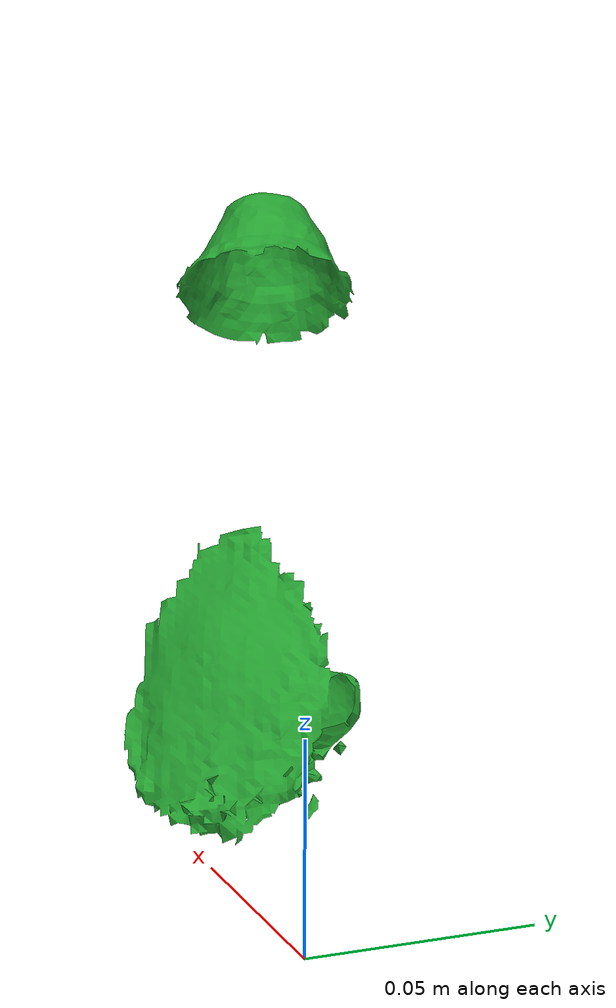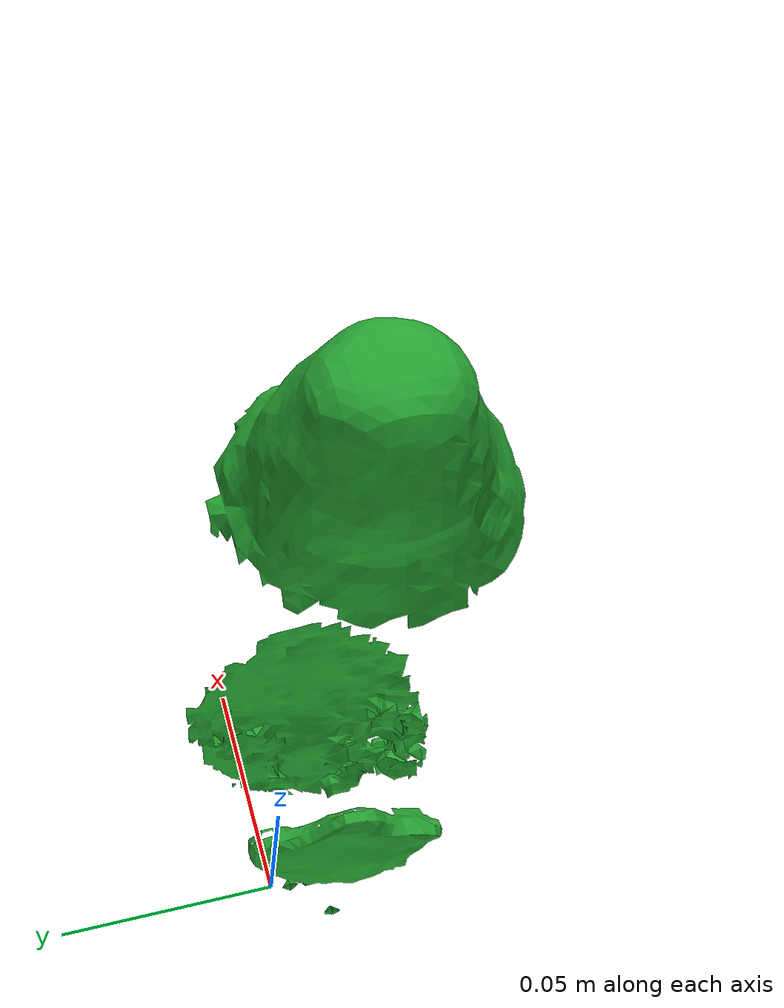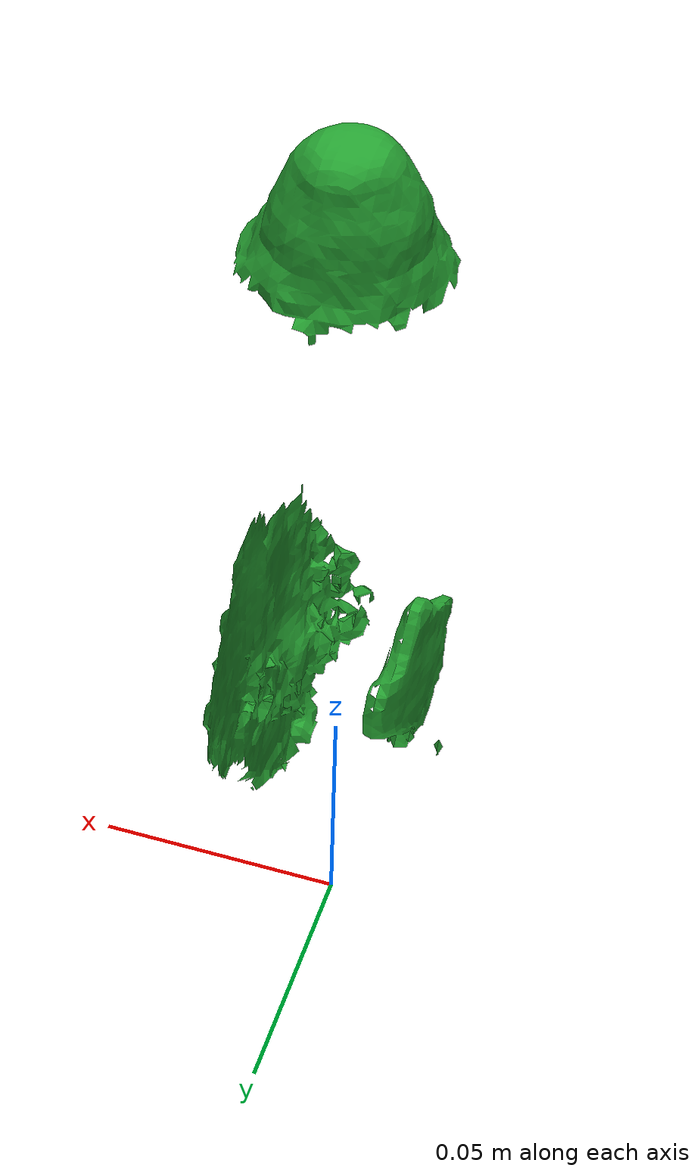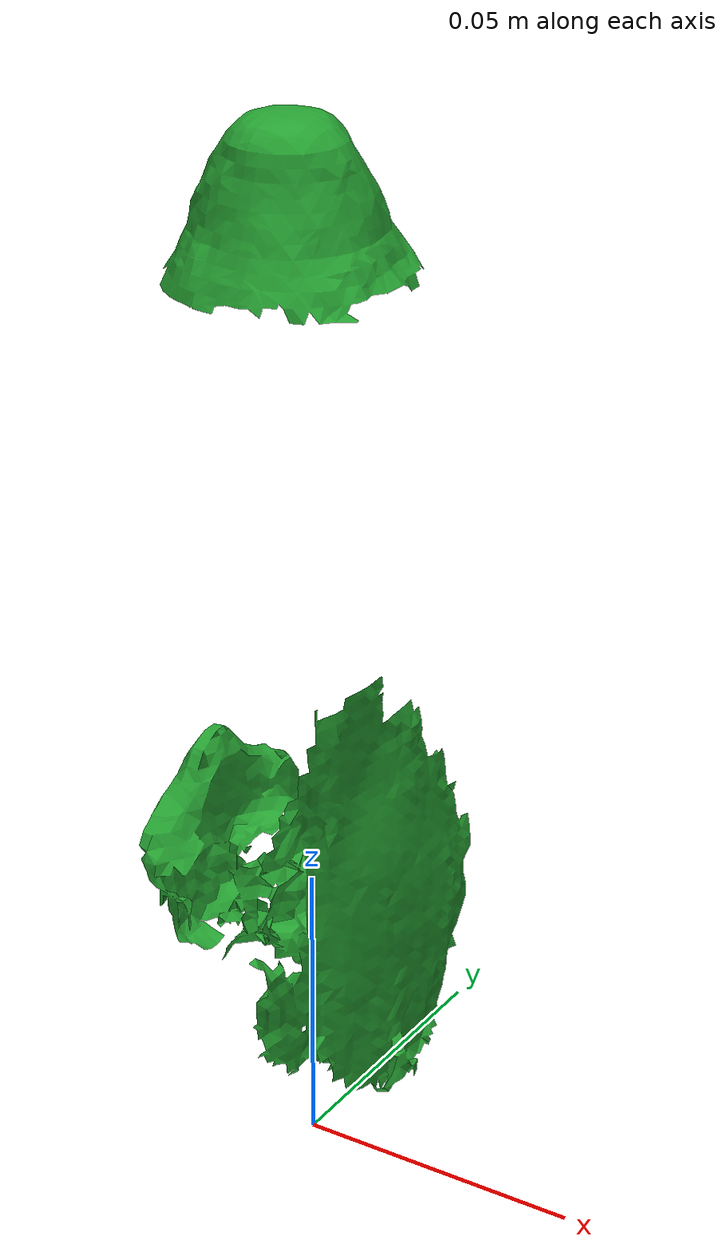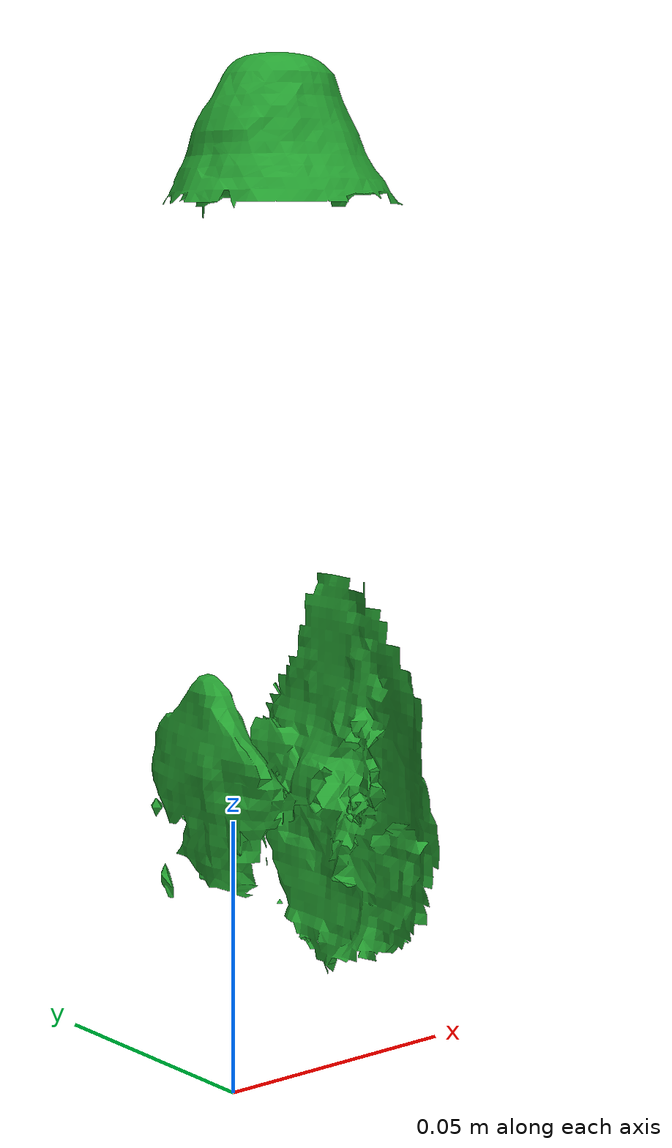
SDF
<?xml version='1.0'?>
<sdf version="1.4">
  <model name="palmolive_green">
    <static>false</static>
    <link name="link">
      <inertial>
        <pose>0.004413640316586356 -0.009642288510061457 0.09853400258237863 3.1407068719229385 0.04130416994326416 2.652894415754196</pose>
        <mass>0.0206418597836205</mass>
        <inertia>
          <ixx>3.511366149426145e-05</ixx>
          <ixy>6.739309602722485e-21</ixy>
          <ixz>-3.50043146415114e-21</ixz>
          <iyy>3.4962380781548594e-05</iyy>
          <iyz>-2.9876056108936067e-21</iyz>
          <izz>4.843524286543765e-06</izz>
        </inertia>
      </inertial>
      <collision name="collision">
        <geometry>
          <mesh>
            <!-- Use a downsampled mesh for collisions -->
            <uri>model:///palmolive_green/palmolive_green_250_collision.obj</uri>
	        </mesh>
        </geometry>
        <surface>
      </surface>
      </collision>
      <visual name="visual">
        <geometry>
          <mesh>
            <uri>model:///palmolive_green/optimized_tsdf_texture_mapped_mesh.obj</uri>
	        </mesh>
        </geometry>
        <material>
          <script>
            <uri>model:///palmolive_green/palmolive_green.material</uri>
            <name>palmolive_green</name>
          </script>
        </material>
      </visual>
    </link>
  </model>
</sdf>
